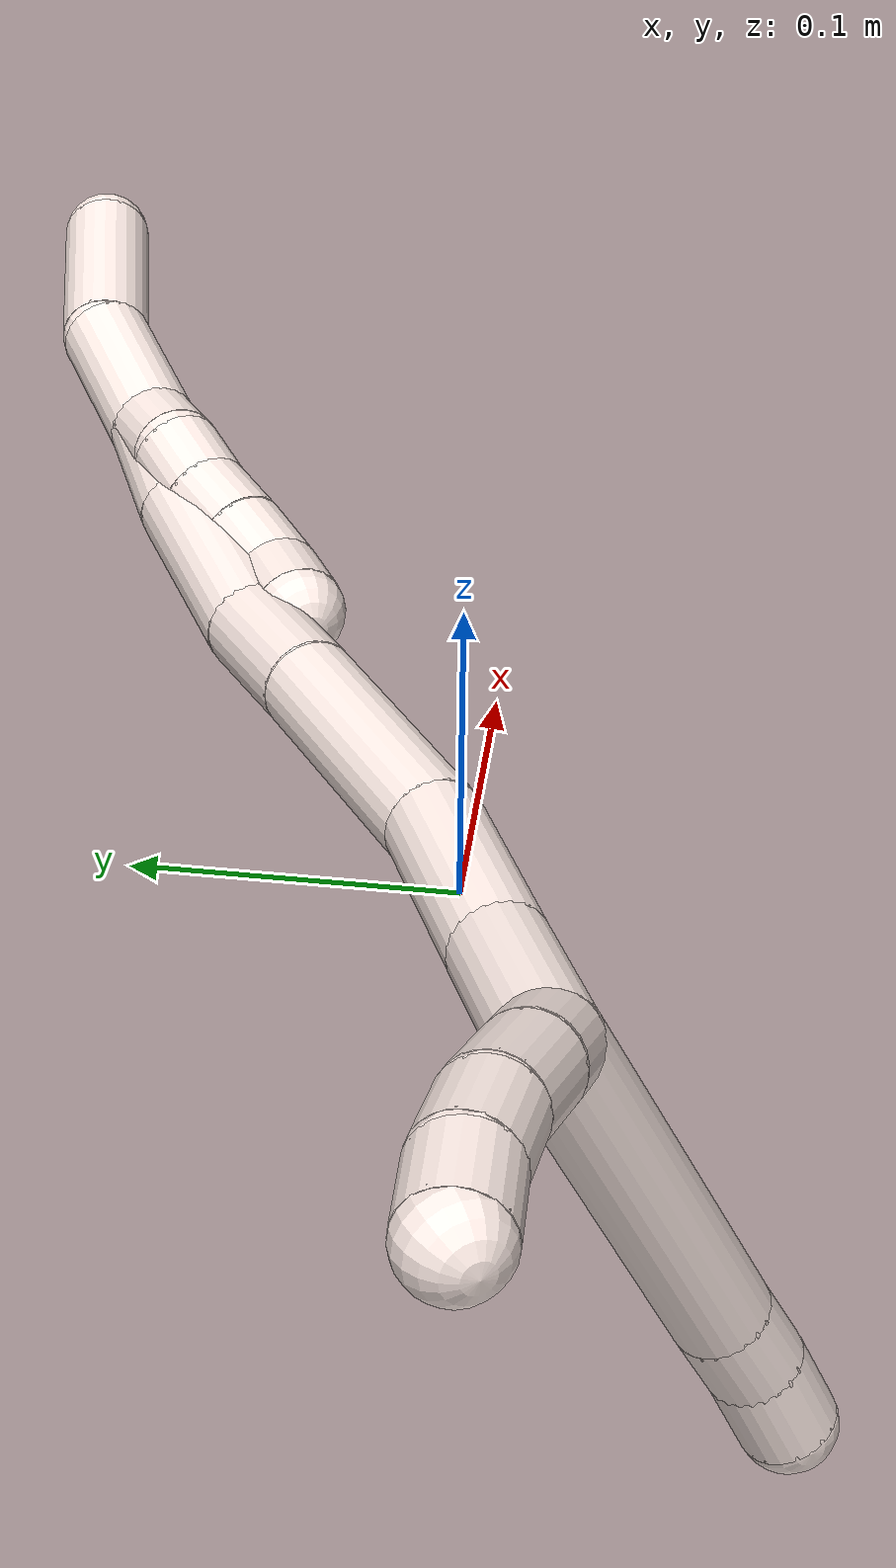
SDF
<sdf version="1.7">
 <world name="default">
  <model name="11">
   <static>0</static>
   <link name="11">
    <collision name="collision-cylinder-e_1_2_8">
     <pose>0.023524 -0.047049 -0.003361 1.64211 0.462631 0.495517</pose>
     <geometry><cylinder><radius>0.0125</radius><length>0.105419</length></cylinder></geometry>
     <surface>
      <friction><ode><mu>1.16</mu><mu2>1.16</mu2><slip1>0</slip1><slip2>0</slip2></ode></friction>
      <contact><ode><kp>1e+06</kp><kd>1</kd><max_vel>0</max_vel><min_depth>0.001</min_depth></ode></contact>
     </surface>
    </collision>
    <visual name="visual-cylinder-e_1_2_8">
     <pose>0.023524 -0.047049 -0.003361 1.64211 0.462631 0.495517</pose>
     <geometry><cylinder><radius>0.0125</radius><length>0.105419</length></cylinder></geometry>
     <material><ambient>1 0.933333 0.909804 1</ambient></material>
    </visual>
    <collision name="collision-cylinder-e_2_8_9">
     <pose>0.051957 -0.103415 -0.007055 1.60659 0.484549 0.501494</pose>
     <geometry><cylinder><radius>0.0125</radius><length>0.021073</length></cylinder></geometry>
     <surface>
      <friction><ode><mu>1.16</mu><mu2>1.16</mu2><slip1>0</slip1><slip2>0</slip2></ode></friction>
      <contact><ode><kp>1e+06</kp><kd>1</kd><max_vel>0</max_vel><min_depth>0.001</min_depth></ode></contact>
     </surface>
    </collision>
    <visual name="visual-cylinder-e_2_8_9">
     <pose>0.051957 -0.103415 -0.007055 1.60659 0.484549 0.501494</pose>
     <geometry><cylinder><radius>0.0125</radius><length>0.021073</length></cylinder></geometry>
     <material><ambient>1 0.933333 0.909804 1</ambient></material>
    </visual>
    <collision name="collision-cylinder-e_3_9_6">
     <pose>0.061652 -0.123464 -0.007086 1.54262 0.419446 0.408118</pose>
     <geometry><cylinder><radius>0.0125</radius><length>0.023508</length></cylinder></geometry>
     <surface>
      <friction><ode><mu>1.16</mu><mu2>1.16</mu2><slip1>0</slip1><slip2>0</slip2></ode></friction>
      <contact><ode><kp>1e+06</kp><kd>1</kd><max_vel>0</max_vel><min_depth>0.001</min_depth></ode></contact>
     </surface>
    </collision>
    <visual name="visual-cylinder-e_3_9_6">
     <pose>0.061652 -0.123464 -0.007086 1.54262 0.419446 0.408118</pose>
     <geometry><cylinder><radius>0.0125</radius><length>0.023508</length></cylinder></geometry>
     <material><ambient>1 0.933333 0.909804 1</ambient></material>
    </visual>
    <collision name="collision-cylinder-e_1_2_10">
     <pose>-0.00621 0.004634 0.008697 -0.489616 -0.562276 0.144039</pose>
     <geometry><cylinder><radius>0.0125</radius><length>0.023295</length></cylinder></geometry>
     <surface>
      <friction><ode><mu>1.16</mu><mu2>1.16</mu2><slip1>0</slip1><slip2>0</slip2></ode></friction>
      <contact><ode><kp>1e+06</kp><kd>1</kd><max_vel>0</max_vel><min_depth>0.001</min_depth></ode></contact>
     </surface>
    </collision>
    <visual name="visual-cylinder-e_1_2_10">
     <pose>-0.00621 0.004634 0.008697 -0.489616 -0.562276 0.144039</pose>
     <geometry><cylinder><radius>0.0125</radius><length>0.023295</length></cylinder></geometry>
     <material><ambient>1 0.933333 0.909804 1</ambient></material>
    </visual>
    <collision name="collision-cylinder-e_2_10_11">
     <pose>-0.021569 0.014101 0.028692 -0.404133 -0.640016 0.135574</pose>
     <geometry><cylinder><radius>0.0125</radius><length>0.030643</length></cylinder></geometry>
     <surface>
      <friction><ode><mu>1.16</mu><mu2>1.16</mu2><slip1>0</slip1><slip2>0</slip2></ode></friction>
      <contact><ode><kp>1e+06</kp><kd>1</kd><max_vel>0</max_vel><min_depth>0.001</min_depth></ode></contact>
     </surface>
    </collision>
    <visual name="visual-cylinder-e_2_10_11">
     <pose>-0.021569 0.014101 0.028692 -0.404133 -0.640016 0.135574</pose>
     <geometry><cylinder><radius>0.0125</radius><length>0.030643</length></cylinder></geometry>
     <material><ambient>1 0.933333 0.909804 1</ambient></material>
    </visual>
    <collision name="collision-cylinder-e_3_11_12">
     <pose>-0.037503 0.020852 0.049714 -0.194791 -0.600251 0.060456</pose>
     <geometry><cylinder><radius>0.0125</radius><length>0.024019</length></cylinder></geometry>
     <surface>
      <friction><ode><mu>1.16</mu><mu2>1.16</mu2><slip1>0</slip1><slip2>0</slip2></ode></friction>
      <contact><ode><kp>1e+06</kp><kd>1</kd><max_vel>0</max_vel><min_depth>0.001</min_depth></ode></contact>
     </surface>
    </collision>
    <visual name="visual-cylinder-e_3_11_12">
     <pose>-0.037503 0.020852 0.049714 -0.194791 -0.600251 0.060456</pose>
     <geometry><cylinder><radius>0.0125</radius><length>0.024019</length></cylinder></geometry>
     <material><ambient>1 0.933333 0.909804 1</ambient></material>
    </visual>
    <collision name="collision-cylinder-e_4_12_5">
     <pose>-0.049501 0.022907 0.069146 -0.014111 -0.492832 0.003549</pose>
     <geometry><cylinder><radius>0.0125</radius><length>0.022043</length></cylinder></geometry>
     <surface>
      <friction><ode><mu>1.16</mu><mu2>1.16</mu2><slip1>0</slip1><slip2>0</slip2></ode></friction>
      <contact><ode><kp>1e+06</kp><kd>1</kd><max_vel>0</max_vel><min_depth>0.001</min_depth></ode></contact>
     </surface>
    </collision>
    <visual name="visual-cylinder-e_4_12_5">
     <pose>-0.049501 0.022907 0.069146 -0.014111 -0.492832 0.003549</pose>
     <geometry><cylinder><radius>0.0125</radius><length>0.022043</length></cylinder></geometry>
     <material><ambient>1 0.933333 0.909804 1</ambient></material>
    </visual>
    <collision name="collision-cylinder-e_1_2_13">
     <pose>0.003342 -0.001904 -0.02108 3.05152 0.156604 2.09891</pose>
     <geometry><cylinder><radius>0.0125</radius><length>0.042855</length></cylinder></geometry>
     <surface>
      <friction><ode><mu>1.16</mu><mu2>1.16</mu2><slip1>0</slip1><slip2>0</slip2></ode></friction>
      <contact><ode><kp>1e+06</kp><kd>1</kd><max_vel>0</max_vel><min_depth>0.001</min_depth></ode></contact>
     </surface>
    </collision>
    <visual name="visual-cylinder-e_1_2_13">
     <pose>0.003342 -0.001904 -0.02108 3.05152 0.156604 2.09891</pose>
     <geometry><cylinder><radius>0.0125</radius><length>0.042855</length></cylinder></geometry>
     <material><ambient>1 0.933333 0.909804 1</ambient></material>
    </visual>
    <collision name="collision-cylinder-e_2_13_14">
     <pose>0.009721 -0.003022 -0.068452 -3.11171 0.11495 -2.63343</pose>
     <geometry><cylinder><radius>0.0125</radius><length>0.052959</length></cylinder></geometry>
     <surface>
      <friction><ode><mu>1.16</mu><mu2>1.16</mu2><slip1>0</slip1><slip2>0</slip2></ode></friction>
      <contact><ode><kp>1e+06</kp><kd>1</kd><max_vel>0</max_vel><min_depth>0.001</min_depth></ode></contact>
     </surface>
    </collision>
    <visual name="visual-cylinder-e_2_13_14">
     <pose>0.009721 -0.003022 -0.068452 -3.11171 0.11495 -2.63343</pose>
     <geometry><cylinder><radius>0.0125</radius><length>0.052959</length></cylinder></geometry>
     <material><ambient>1 0.933333 0.909804 1</ambient></material>
    </visual>
    <collision name="collision-cylinder-e_3_14_15">
     <pose>0.010368 -0.000864 -0.13009 -3.10281 -0.067477 2.09847</pose>
     <geometry><cylinder><radius>0.0125</radius><length>0.070905</length></cylinder></geometry>
     <surface>
      <friction><ode><mu>1.16</mu><mu2>1.16</mu2><slip1>0</slip1><slip2>0</slip2></ode></friction>
      <contact><ode><kp>1e+06</kp><kd>1</kd><max_vel>0</max_vel><min_depth>0.001</min_depth></ode></contact>
     </surface>
    </collision>
    <visual name="visual-cylinder-e_3_14_15">
     <pose>0.010368 -0.000864 -0.13009 -3.10281 -0.067477 2.09847</pose>
     <geometry><cylinder><radius>0.0125</radius><length>0.070905</length></cylinder></geometry>
     <material><ambient>1 0.933333 0.909804 1</ambient></material>
    </visual>
    <collision name="collision-cylinder-e_4_15_16">
     <pose>0.007034 4.6e-05 -0.184373 3.11723 -0.049779 -2.23151</pose>
     <geometry><cylinder><radius>0.0125</radius><length>0.037934</length></cylinder></geometry>
     <surface>
      <friction><ode><mu>1.16</mu><mu2>1.16</mu2><slip1>0</slip1><slip2>0</slip2></ode></friction>
      <contact><ode><kp>1e+06</kp><kd>1</kd><max_vel>0</max_vel><min_depth>0.001</min_depth></ode></contact>
     </surface>
    </collision>
    <visual name="visual-cylinder-e_4_15_16">
     <pose>0.007034 4.6e-05 -0.184373 3.11723 -0.049779 -2.23151</pose>
     <geometry><cylinder><radius>0.0125</radius><length>0.037934</length></cylinder></geometry>
     <material><ambient>1 0.933333 0.909804 1</ambient></material>
    </visual>
    <collision name="collision-cylinder-e_5_16_17">
     <pose>0.006799 0.003627 -0.232717 -3.00499 0.023896 -0.345838</pose>
     <geometry><cylinder><radius>0.0125</radius><length>0.059382</length></cylinder></geometry>
     <surface>
      <friction><ode><mu>1.16</mu><mu2>1.16</mu2><slip1>0</slip1><slip2>0</slip2></ode></friction>
      <contact><ode><kp>1e+06</kp><kd>1</kd><max_vel>0</max_vel><min_depth>0.001</min_depth></ode></contact>
     </surface>
    </collision>
    <visual name="visual-cylinder-e_5_16_17">
     <pose>0.006799 0.003627 -0.232717 -3.00499 0.023896 -0.345838</pose>
     <geometry><cylinder><radius>0.0125</radius><length>0.059382</length></cylinder></geometry>
     <material><ambient>1 0.933333 0.909804 1</ambient></material>
    </visual>
    <collision name="collision-cylinder-e_6_17_1">
     <pose>0.008976 0.012445 -0.279397 -2.87184 0.081707 -0.585161</pose>
     <geometry><cylinder><radius>0.0125</radius><length>0.035965</length></cylinder></geometry>
     <surface>
      <friction><ode><mu>1.16</mu><mu2>1.16</mu2><slip1>0</slip1><slip2>0</slip2></ode></friction>
      <contact><ode><kp>1e+06</kp><kd>1</kd><max_vel>0</max_vel><min_depth>0.001</min_depth></ode></contact>
     </surface>
    </collision>
    <visual name="visual-cylinder-e_6_17_1">
     <pose>0.008976 0.012445 -0.279397 -2.87184 0.081707 -0.585161</pose>
     <geometry><cylinder><radius>0.0125</radius><length>0.035965</length></cylinder></geometry>
     <material><ambient>1 0.933333 0.909804 1</ambient></material>
    </visual>
    <collision name="collision-cylinder-e_1_1_18">
     <pose>0.010282 0.023094 -0.317628 -2.86838 -0.007454 0.054214</pose>
     <geometry><cylinder><radius>0.0125</radius><length>0.043528</length></cylinder></geometry>
     <surface>
      <friction><ode><mu>1.16</mu><mu2>1.16</mu2><slip1>0</slip1><slip2>0</slip2></ode></friction>
      <contact><ode><kp>1e+06</kp><kd>1</kd><max_vel>0</max_vel><min_depth>0.001</min_depth></ode></contact>
     </surface>
    </collision>
    <visual name="visual-cylinder-e_1_1_18">
     <pose>0.010282 0.023094 -0.317628 -2.86838 -0.007454 0.054214</pose>
     <geometry><cylinder><radius>0.0125</radius><length>0.043528</length></cylinder></geometry>
     <material><ambient>1 0.933333 0.909804 1</ambient></material>
    </visual>
    <collision name="collision-cylinder-e_2_18_4">
     <pose>0.01892 0.034033 -0.364931 -2.95161 0.316952 -2.06638</pose>
     <geometry><cylinder><radius>0.0125</radius><length>0.056472</length></cylinder></geometry>
     <surface>
      <friction><ode><mu>1.16</mu><mu2>1.16</mu2><slip1>0</slip1><slip2>0</slip2></ode></friction>
      <contact><ode><kp>1e+06</kp><kd>1</kd><max_vel>0</max_vel><min_depth>0.001</min_depth></ode></contact>
     </surface>
    </collision>
    <visual name="visual-cylinder-e_2_18_4">
     <pose>0.01892 0.034033 -0.364931 -2.95161 0.316952 -2.06638</pose>
     <geometry><cylinder><radius>0.0125</radius><length>0.056472</length></cylinder></geometry>
     <material><ambient>1 0.933333 0.909804 1</ambient></material>
    </visual>
    <collision name="collision-cylinder-e_1_1_19">
     <pose>0.010529 0.017614 -0.28668 -0.039238 0.008536 -0.000167</pose>
     <geometry><cylinder><radius>0.0125</radius><length>0.02</length></cylinder></geometry>
     <surface>
      <friction><ode><mu>1.16</mu><mu2>1.16</mu2><slip1>0</slip1><slip2>0</slip2></ode></friction>
      <contact><ode><kp>1e+06</kp><kd>1</kd><max_vel>0</max_vel><min_depth>0.001</min_depth></ode></contact>
     </surface>
    </collision>
    <visual name="visual-cylinder-e_1_1_19">
     <pose>0.010529 0.017614 -0.28668 -0.039238 0.008536 -0.000167</pose>
     <geometry><cylinder><radius>0.0125</radius><length>0.02</length></cylinder></geometry>
     <material><ambient>1 0.933333 0.909804 1</ambient></material>
    </visual>
    <collision name="collision-cylinder-e_2_19_20">
     <pose>0.011503 0.01532 -0.267097 0.273093 0.088965 0.012232</pose>
     <geometry><cylinder><radius>0.0125</radius><length>0.02</length></cylinder></geometry>
     <surface>
      <friction><ode><mu>1.16</mu><mu2>1.16</mu2><slip1>0</slip1><slip2>0</slip2></ode></friction>
      <contact><ode><kp>1e+06</kp><kd>1</kd><max_vel>0</max_vel><min_depth>0.001</min_depth></ode></contact>
     </surface>
    </collision>
    <visual name="visual-cylinder-e_2_19_20">
     <pose>0.011503 0.01532 -0.267097 0.273093 0.088965 0.012232</pose>
     <geometry><cylinder><radius>0.0125</radius><length>0.02</length></cylinder></geometry>
     <material><ambient>1 0.933333 0.909804 1</ambient></material>
    </visual>
    <collision name="collision-cylinder-e_3_20_21">
     <pose>0.014027 0.010618 -0.247848 0.205687 0.164254 0.01699</pose>
     <geometry><cylinder><radius>0.0125</radius><length>0.02</length></cylinder></geometry>
     <surface>
      <friction><ode><mu>1.16</mu><mu2>1.16</mu2><slip1>0</slip1><slip2>0</slip2></ode></friction>
      <contact><ode><kp>1e+06</kp><kd>1</kd><max_vel>0</max_vel><min_depth>0.001</min_depth></ode></contact>
     </surface>
    </collision>
    <visual name="visual-cylinder-e_3_20_21">
     <pose>0.014027 0.010618 -0.247848 0.205687 0.164254 0.01699</pose>
     <geometry><cylinder><radius>0.0125</radius><length>0.02</length></cylinder></geometry>
     <material><ambient>1 0.933333 0.909804 1</ambient></material>
    </visual>
    <collision name="collision-cylinder-e_4_21_22">
     <pose>0.017056 0.006197 -0.228585 0.245504 0.13983 0.017279</pose>
     <geometry><cylinder><radius>0.0125</radius><length>0.02</length></cylinder></geometry>
     <surface>
      <friction><ode><mu>1.16</mu><mu2>1.16</mu2><slip1>0</slip1><slip2>0</slip2></ode></friction>
      <contact><ode><kp>1e+06</kp><kd>1</kd><max_vel>0</max_vel><min_depth>0.001</min_depth></ode></contact>
     </surface>
    </collision>
    <visual name="visual-cylinder-e_4_21_22">
     <pose>0.017056 0.006197 -0.228585 0.245504 0.13983 0.017279</pose>
     <geometry><cylinder><radius>0.0125</radius><length>0.02</length></cylinder></geometry>
     <material><ambient>1 0.933333 0.909804 1</ambient></material>
    </visual>
    <collision name="collision-cylinder-e_5_22_3">
     <pose>0.017921 0.003706 -0.208994 0.008408 -0.052828 -0.000222</pose>
     <geometry><cylinder><radius>0.0125</radius><length>0.02</length></cylinder></geometry>
     <surface>
      <friction><ode><mu>1.16</mu><mu2>1.16</mu2><slip1>0</slip1><slip2>0</slip2></ode></friction>
      <contact><ode><kp>1e+06</kp><kd>1</kd><max_vel>0</max_vel><min_depth>0.001</min_depth></ode></contact>
     </surface>
    </collision>
    <visual name="visual-cylinder-e_5_22_3">
     <pose>0.017921 0.003706 -0.208994 0.008408 -0.052828 -0.000222</pose>
     <geometry><cylinder><radius>0.0125</radius><length>0.02</length></cylinder></geometry>
     <material><ambient>1 0.933333 0.909804 1</ambient></material>
    </visual>
    <collision name="collision-sphere-3">
     <pose>0.017393 0.003622 -0.199008 0 -0 0</pose>
     <geometry><sphere><radius>0.0125</radius></sphere></geometry>
     <surface>
      <friction><ode><mu>1.16</mu><mu2>1.16</mu2><slip1>0</slip1><slip2>0</slip2></ode></friction>
      <contact><ode><kp>1e+06</kp><kd>1</kd><max_vel>0</max_vel><min_depth>0.001</min_depth></ode></contact>
     </surface>
    </collision>
    <visual name="visual-sphere-3">
     <pose>0.017393 0.003622 -0.199008 0 -0 0</pose>
     <geometry><sphere><radius>0.0125</radius></sphere></geometry>
     <material><ambient>1 0.933333 0.909804 1</ambient></material>
    </visual>
    <collision name="collision-sphere-22">
     <pose>0.01845 0.00379 -0.21898 0 -0 0</pose>
     <geometry><sphere><radius>0.0125</radius></sphere></geometry>
     <surface>
      <friction><ode><mu>1.16</mu><mu2>1.16</mu2><slip1>0</slip1><slip2>0</slip2></ode></friction>
      <contact><ode><kp>1e+06</kp><kd>1</kd><max_vel>0</max_vel><min_depth>0.001</min_depth></ode></contact>
     </surface>
    </collision>
    <visual name="visual-sphere-22">
     <pose>0.01845 0.00379 -0.21898 0 -0 0</pose>
     <geometry><sphere><radius>0.0125</radius></sphere></geometry>
     <material><ambient>1 0.933333 0.909804 1</ambient></material>
    </visual>
    <collision name="collision-sphere-21">
     <pose>0.015662 0.008603 -0.238191 0 -0 0</pose>
     <geometry><sphere><radius>0.0125</radius></sphere></geometry>
     <surface>
      <friction><ode><mu>1.16</mu><mu2>1.16</mu2><slip1>0</slip1><slip2>0</slip2></ode></friction>
      <contact><ode><kp>1e+06</kp><kd>1</kd><max_vel>0</max_vel><min_depth>0.001</min_depth></ode></contact>
     </surface>
    </collision>
    <visual name="visual-sphere-21">
     <pose>0.015662 0.008603 -0.238191 0 -0 0</pose>
     <geometry><sphere><radius>0.0125</radius></sphere></geometry>
     <material><ambient>1 0.933333 0.909804 1</ambient></material>
    </visual>
    <collision name="collision-sphere-20">
     <pose>0.012392 0.012633 -0.257505 0 -0 0</pose>
     <geometry><sphere><radius>0.0125</radius></sphere></geometry>
     <surface>
      <friction><ode><mu>1.16</mu><mu2>1.16</mu2><slip1>0</slip1><slip2>0</slip2></ode></friction>
      <contact><ode><kp>1e+06</kp><kd>1</kd><max_vel>0</max_vel><min_depth>0.001</min_depth></ode></contact>
     </surface>
    </collision>
    <visual name="visual-sphere-20">
     <pose>0.012392 0.012633 -0.257505 0 -0 0</pose>
     <geometry><sphere><radius>0.0125</radius></sphere></geometry>
     <material><ambient>1 0.933333 0.909804 1</ambient></material>
    </visual>
    <collision name="collision-sphere-19">
     <pose>0.010615 0.018006 -0.276688 0 -0 0</pose>
     <geometry><sphere><radius>0.0125</radius></sphere></geometry>
     <surface>
      <friction><ode><mu>1.16</mu><mu2>1.16</mu2><slip1>0</slip1><slip2>0</slip2></ode></friction>
      <contact><ode><kp>1e+06</kp><kd>1</kd><max_vel>0</max_vel><min_depth>0.001</min_depth></ode></contact>
     </surface>
    </collision>
    <visual name="visual-sphere-19">
     <pose>0.010615 0.018006 -0.276688 0 -0 0</pose>
     <geometry><sphere><radius>0.0125</radius></sphere></geometry>
     <material><ambient>1 0.933333 0.909804 1</ambient></material>
    </visual>
    <collision name="collision-sphere-11">
     <pose>-0.030719 0.018933 0.039991 0 -0 0</pose>
     <geometry><sphere><radius>0.0125</radius></sphere></geometry>
     <surface>
      <friction><ode><mu>1.16</mu><mu2>1.16</mu2><slip1>0</slip1><slip2>0</slip2></ode></friction>
      <contact><ode><kp>1e+06</kp><kd>1</kd><max_vel>0</max_vel><min_depth>0.001</min_depth></ode></contact>
     </surface>
    </collision>
    <visual name="visual-sphere-11">
     <pose>-0.030719 0.018933 0.039991 0 -0 0</pose>
     <geometry><sphere><radius>0.0125</radius></sphere></geometry>
     <material><ambient>1 0.933333 0.909804 1</ambient></material>
    </visual>
    <collision name="collision-sphere-10">
     <pose>-0.012419 0.009269 0.017393 0 -0 0</pose>
     <geometry><sphere><radius>0.0125</radius></sphere></geometry>
     <surface>
      <friction><ode><mu>1.16</mu><mu2>1.16</mu2><slip1>0</slip1><slip2>0</slip2></ode></friction>
      <contact><ode><kp>1e+06</kp><kd>1</kd><max_vel>0</max_vel><min_depth>0.001</min_depth></ode></contact>
     </surface>
    </collision>
    <visual name="visual-sphere-10">
     <pose>-0.012419 0.009269 0.017393 0 -0 0</pose>
     <geometry><sphere><radius>0.0125</radius></sphere></geometry>
     <material><ambient>1 0.933333 0.909804 1</ambient></material>
    </visual>
    <collision name="collision-sphere-6">
     <pose>0.066439 -0.134195 -0.006784 0 -0 0</pose>
     <geometry><sphere><radius>0.0125</radius></sphere></geometry>
     <surface>
      <friction><ode><mu>1.16</mu><mu2>1.16</mu2><slip1>0</slip1><slip2>0</slip2></ode></friction>
      <contact><ode><kp>1e+06</kp><kd>1</kd><max_vel>0</max_vel><min_depth>0.001</min_depth></ode></contact>
     </surface>
    </collision>
    <visual name="visual-sphere-6">
     <pose>0.066439 -0.134195 -0.006784 0 -0 0</pose>
     <geometry><sphere><radius>0.0125</radius></sphere></geometry>
     <material><ambient>1 0.933333 0.909804 1</ambient></material>
    </visual>
    <collision name="collision-sphere-9">
     <pose>0.056865 -0.112733 -0.007389 0 -0 0</pose>
     <geometry><sphere><radius>0.0125</radius></sphere></geometry>
     <surface>
      <friction><ode><mu>1.16</mu><mu2>1.16</mu2><slip1>0</slip1><slip2>0</slip2></ode></friction>
      <contact><ode><kp>1e+06</kp><kd>1</kd><max_vel>0</max_vel><min_depth>0.001</min_depth></ode></contact>
     </surface>
    </collision>
    <visual name="visual-sphere-9">
     <pose>0.056865 -0.112733 -0.007389 0 -0 0</pose>
     <geometry><sphere><radius>0.0125</radius></sphere></geometry>
     <material><ambient>1 0.933333 0.909804 1</ambient></material>
    </visual>
    <collision name="collision-sphere-2">
     <geometry><sphere><radius>0.0125</radius></sphere></geometry>
     <surface>
      <friction><ode><mu>1.16</mu><mu2>1.16</mu2><slip1>0</slip1><slip2>0</slip2></ode></friction>
      <contact><ode><kp>1e+06</kp><kd>1</kd><max_vel>0</max_vel><min_depth>0.001</min_depth></ode></contact>
     </surface>
    </collision>
    <visual name="visual-sphere-2">
     <geometry><sphere><radius>0.0125</radius></sphere></geometry>
     <material><ambient>1 0.933333 0.909804 1</ambient></material>
    </visual>
    <collision name="collision-sphere-8">
     <pose>0.047049 -0.094098 -0.006721 0 -0 0</pose>
     <geometry><sphere><radius>0.0125</radius></sphere></geometry>
     <surface>
      <friction><ode><mu>1.16</mu><mu2>1.16</mu2><slip1>0</slip1><slip2>0</slip2></ode></friction>
      <contact><ode><kp>1e+06</kp><kd>1</kd><max_vel>0</max_vel><min_depth>0.001</min_depth></ode></contact>
     </surface>
    </collision>
    <visual name="visual-sphere-8">
     <pose>0.047049 -0.094098 -0.006721 0 -0 0</pose>
     <geometry><sphere><radius>0.0125</radius></sphere></geometry>
     <material><ambient>1 0.933333 0.909804 1</ambient></material>
    </visual>
    <collision name="collision-sphere-12">
     <pose>-0.044286 0.02277 0.059437 0 -0 0</pose>
     <geometry><sphere><radius>0.0125</radius></sphere></geometry>
     <surface>
      <friction><ode><mu>1.16</mu><mu2>1.16</mu2><slip1>0</slip1><slip2>0</slip2></ode></friction>
      <contact><ode><kp>1e+06</kp><kd>1</kd><max_vel>0</max_vel><min_depth>0.001</min_depth></ode></contact>
     </surface>
    </collision>
    <visual name="visual-sphere-12">
     <pose>-0.044286 0.02277 0.059437 0 -0 0</pose>
     <geometry><sphere><radius>0.0125</radius></sphere></geometry>
     <material><ambient>1 0.933333 0.909804 1</ambient></material>
    </visual>
    <collision name="collision-sphere-5">
     <pose>-0.054715 0.023044 0.078855 0 -0 0</pose>
     <geometry><sphere><radius>0.0125</radius></sphere></geometry>
     <surface>
      <friction><ode><mu>1.16</mu><mu2>1.16</mu2><slip1>0</slip1><slip2>0</slip2></ode></friction>
      <contact><ode><kp>1e+06</kp><kd>1</kd><max_vel>0</max_vel><min_depth>0.001</min_depth></ode></contact>
     </surface>
    </collision>
    <visual name="visual-sphere-5">
     <pose>-0.054715 0.023044 0.078855 0 -0 0</pose>
     <geometry><sphere><radius>0.0125</radius></sphere></geometry>
     <material><ambient>1 0.933333 0.909804 1</ambient></material>
    </visual>
    <collision name="collision-sphere-13">
     <pose>0.006684 -0.003808 -0.042159 0 -0 0</pose>
     <geometry><sphere><radius>0.0125</radius></sphere></geometry>
     <surface>
      <friction><ode><mu>1.16</mu><mu2>1.16</mu2><slip1>0</slip1><slip2>0</slip2></ode></friction>
      <contact><ode><kp>1e+06</kp><kd>1</kd><max_vel>0</max_vel><min_depth>0.001</min_depth></ode></contact>
     </surface>
    </collision>
    <visual name="visual-sphere-13">
     <pose>0.006684 -0.003808 -0.042159 0 -0 0</pose>
     <geometry><sphere><radius>0.0125</radius></sphere></geometry>
     <material><ambient>1 0.933333 0.909804 1</ambient></material>
    </visual>
    <collision name="collision-sphere-14">
     <pose>0.012758 -0.002236 -0.094745 0 -0 0</pose>
     <geometry><sphere><radius>0.0125</radius></sphere></geometry>
     <surface>
      <friction><ode><mu>1.16</mu><mu2>1.16</mu2><slip1>0</slip1><slip2>0</slip2></ode></friction>
      <contact><ode><kp>1e+06</kp><kd>1</kd><max_vel>0</max_vel><min_depth>0.001</min_depth></ode></contact>
     </surface>
    </collision>
    <visual name="visual-sphere-14">
     <pose>0.012758 -0.002236 -0.094745 0 -0 0</pose>
     <geometry><sphere><radius>0.0125</radius></sphere></geometry>
     <material><ambient>1 0.933333 0.909804 1</ambient></material>
    </visual>
    <collision name="collision-sphere-15">
     <pose>0.007977 0.000507 -0.165435 0 -0 0</pose>
     <geometry><sphere><radius>0.0125</radius></sphere></geometry>
     <surface>
      <friction><ode><mu>1.16</mu><mu2>1.16</mu2><slip1>0</slip1><slip2>0</slip2></ode></friction>
      <contact><ode><kp>1e+06</kp><kd>1</kd><max_vel>0</max_vel><min_depth>0.001</min_depth></ode></contact>
     </surface>
    </collision>
    <visual name="visual-sphere-15">
     <pose>0.007977 0.000507 -0.165435 0 -0 0</pose>
     <geometry><sphere><radius>0.0125</radius></sphere></geometry>
     <material><ambient>1 0.933333 0.909804 1</ambient></material>
    </visual>
    <collision name="collision-sphere-16">
     <pose>0.00609 -0.000415 -0.203311 0 -0 0</pose>
     <geometry><sphere><radius>0.0125</radius></sphere></geometry>
     <surface>
      <friction><ode><mu>1.16</mu><mu2>1.16</mu2><slip1>0</slip1><slip2>0</slip2></ode></friction>
      <contact><ode><kp>1e+06</kp><kd>1</kd><max_vel>0</max_vel><min_depth>0.001</min_depth></ode></contact>
     </surface>
    </collision>
    <visual name="visual-sphere-16">
     <pose>0.00609 -0.000415 -0.203311 0 -0 0</pose>
     <geometry><sphere><radius>0.0125</radius></sphere></geometry>
     <material><ambient>1 0.933333 0.909804 1</ambient></material>
    </visual>
    <collision name="collision-sphere-17">
     <pose>0.007509 0.007669 -0.262123 0 -0 0</pose>
     <geometry><sphere><radius>0.0125</radius></sphere></geometry>
     <surface>
      <friction><ode><mu>1.16</mu><mu2>1.16</mu2><slip1>0</slip1><slip2>0</slip2></ode></friction>
      <contact><ode><kp>1e+06</kp><kd>1</kd><max_vel>0</max_vel><min_depth>0.001</min_depth></ode></contact>
     </surface>
    </collision>
    <visual name="visual-sphere-17">
     <pose>0.007509 0.007669 -0.262123 0 -0 0</pose>
     <geometry><sphere><radius>0.0125</radius></sphere></geometry>
     <material><ambient>1 0.933333 0.909804 1</ambient></material>
    </visual>
    <collision name="collision-sphere-1">
     <pose>0.010444 0.017221 -0.296672 0 -0 0</pose>
     <geometry><sphere><radius>0.0125</radius></sphere></geometry>
     <surface>
      <friction><ode><mu>1.16</mu><mu2>1.16</mu2><slip1>0</slip1><slip2>0</slip2></ode></friction>
      <contact><ode><kp>1e+06</kp><kd>1</kd><max_vel>0</max_vel><min_depth>0.001</min_depth></ode></contact>
     </surface>
    </collision>
    <visual name="visual-sphere-1">
     <pose>0.010444 0.017221 -0.296672 0 -0 0</pose>
     <geometry><sphere><radius>0.0125</radius></sphere></geometry>
     <material><ambient>1 0.933333 0.909804 1</ambient></material>
    </visual>
    <collision name="collision-sphere-18">
     <pose>0.01012 0.028966 -0.338584 0 -0 0</pose>
     <geometry><sphere><radius>0.0125</radius></sphere></geometry>
     <surface>
      <friction><ode><mu>1.16</mu><mu2>1.16</mu2><slip1>0</slip1><slip2>0</slip2></ode></friction>
      <contact><ode><kp>1e+06</kp><kd>1</kd><max_vel>0</max_vel><min_depth>0.001</min_depth></ode></contact>
     </surface>
    </collision>
    <visual name="visual-sphere-18">
     <pose>0.01012 0.028966 -0.338584 0 -0 0</pose>
     <geometry><sphere><radius>0.0125</radius></sphere></geometry>
     <material><ambient>1 0.933333 0.909804 1</ambient></material>
    </visual>
    <collision name="collision-sphere-4">
     <pose>0.02772 0.039099 -0.391278 0 -0 0</pose>
     <geometry><sphere><radius>0.0125</radius></sphere></geometry>
     <surface>
      <friction><ode><mu>1.16</mu><mu2>1.16</mu2><slip1>0</slip1><slip2>0</slip2></ode></friction>
      <contact><ode><kp>1e+06</kp><kd>1</kd><max_vel>0</max_vel><min_depth>0.001</min_depth></ode></contact>
     </surface>
    </collision>
    <visual name="visual-sphere-4">
     <pose>0.02772 0.039099 -0.391278 0 -0 0</pose>
     <geometry><sphere><radius>0.0125</radius></sphere></geometry>
     <material><ambient>1 0.933333 0.909804 1</ambient></material>
    </visual>
    <inertial>
     <pose>0.010067 -0.005517 -0.134269 0 -0 0</pose>
     <mass>0.75</mass>
     <inertia><ixx>0.000134</ixx><ixy>0</ixy><ixz>0</ixz><iyy>8.6e-05</iyy><iyz>0</iyz><izz>1.6e-05</izz></inertia>
    </inertial>
   </link>
   <pose>-0.232332 -0.044891 0.14685 1.47238 0.018989 -1.0547</pose>
  </model>
 </world>
</sdf>
